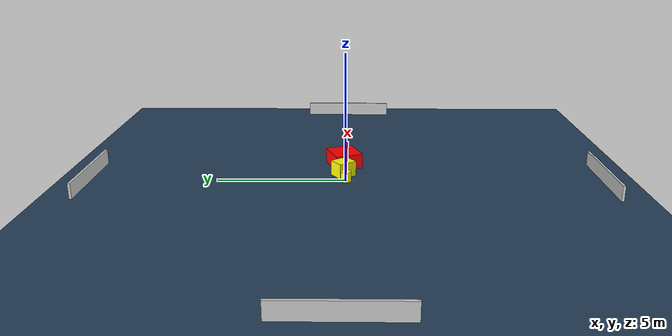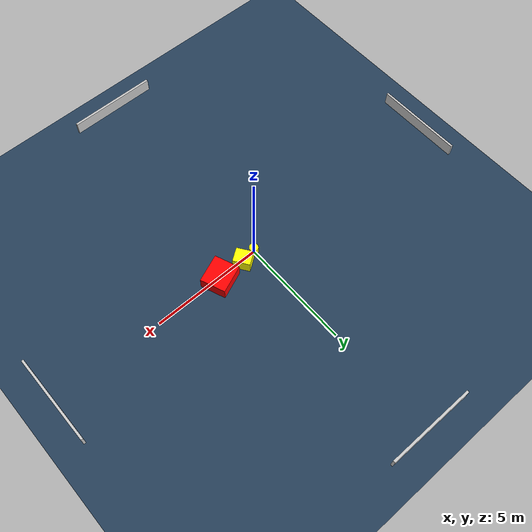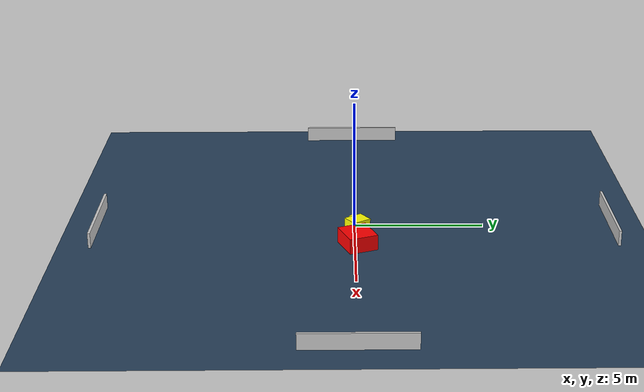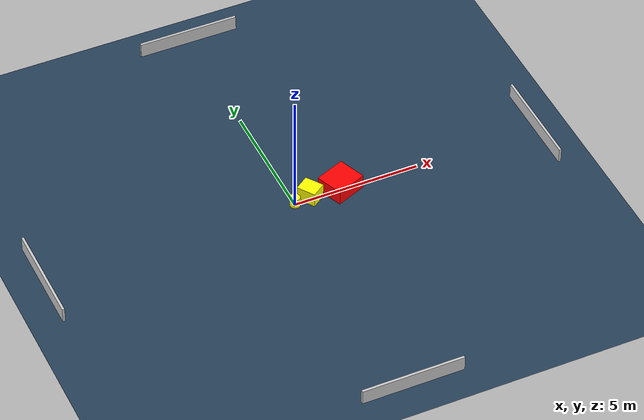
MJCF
<?xml version="1.0" ?>
<mujoco model="generated_environment">
  <option timestep="0.01" integrator="RK4" cone="elliptic"/>
  <default>
    <geom density="1"/>
  </default>
  <asset>
    <texture builtin="gradient" height="3072" name="skybox" rgb1="0.3 0.5 0.7" rgb2="0 0 0" type="skybox" width="512"/>
    <texture builtin="checker" height="300" name="groundplane" rgb1="0.2 0.3 0.4" rgb2="0.1 0.2 0.3" type="2d" width="300"/>
    <material name="groundplane" reflectance="0.2" texrepeat="5 5" texture="groundplane"/>
  </asset>
  <worldbody>
    <light dir="0 0 -1" directional="true" pos="0 0 1.5"/>
    <geom condim="3" friction="0.5 0.005 0.001" material="groundplane" name="floor" pos="0 0 0" size="0 0 0.05" type="plane"/>
    <body name="walls">
      <geom name="wall_1" condim="4" pos="-10.0 0.0 0.3" rgba="0.800000011920929 0.800000011920929 0.800000011920929 1.0" size="0.05 2.0 0.3" type="box"/>
      <geom name="wall_2" condim="4" pos="10.0 0.0 0.3" rgba="0.800000011920929 0.800000011920929 0.800000011920929 1.0" size="0.05 2.0 0.3" type="box"/>
      <geom name="wall_3" condim="4" pos="0.0 -10.0 0.3" rgba="0.800000011920929 0.800000011920929 0.800000011920929 1.0" size="2.0 0.05 0.3" type="box"/>
      <geom name="wall_4" condim="4" pos="0.0 10.0 0.3" rgba="0.800000011920929 0.800000011920929 0.800000011920929 1.0" size="2.0 0.05 0.3" type="box"/>
    </body>
    <body name="robot">
      <joint name="joint_x" type="slide" pos="0 0 0" axis="1 0 0"/>
      <joint name="joint_y" type="slide" pos="0 0 0" axis="0 1 0"/>
      <geom name="robot" type="cylinder" pos="0.0 0.0 0.2" size="0.2 0.2 0.0" mass="5.0" friction="1.0 0.005 0.0001" condim="4" rgba="1.0 1.0 0.0 1.0"/>
    </body>
    <body name="obstacle_1_movable">
      <geom name="obstacle_1_movable" condim="4" pos="0.6685001451296279 0.10923296779358606 0.3" euler="0 0 304.7576496934976" friction="0.0 0.005 0.001" rgba="1.0 1.0 0.0 1.0" size="0.378093659231173 0.3212706529844009 0.3" type="box" mass="0.1"/>
      <joint type="free"/>
    </body>
    <body name="obstacle_2_static">
      <geom name="obstacle_2_static" condim="4" pos="1.9023247757655923 0.09425464186866993 0.3" euler="0 0 111.77449547970286" friction="0.0 0.005 0.001" rgba="1.0 0.0 0.0 1.0" size="0.5641699010216101 0.6290336665494682 0.3" type="box"/>
    </body>
  </worldbody>
  <actuator>
    <motor name="actuator_x" joint="joint_x" gear="1" ctrlrange="-1 1"/>
    <motor name="actuator_y" joint="joint_y" gear="1" ctrlrange="-1 1"/>
  </actuator>
</mujoco>
